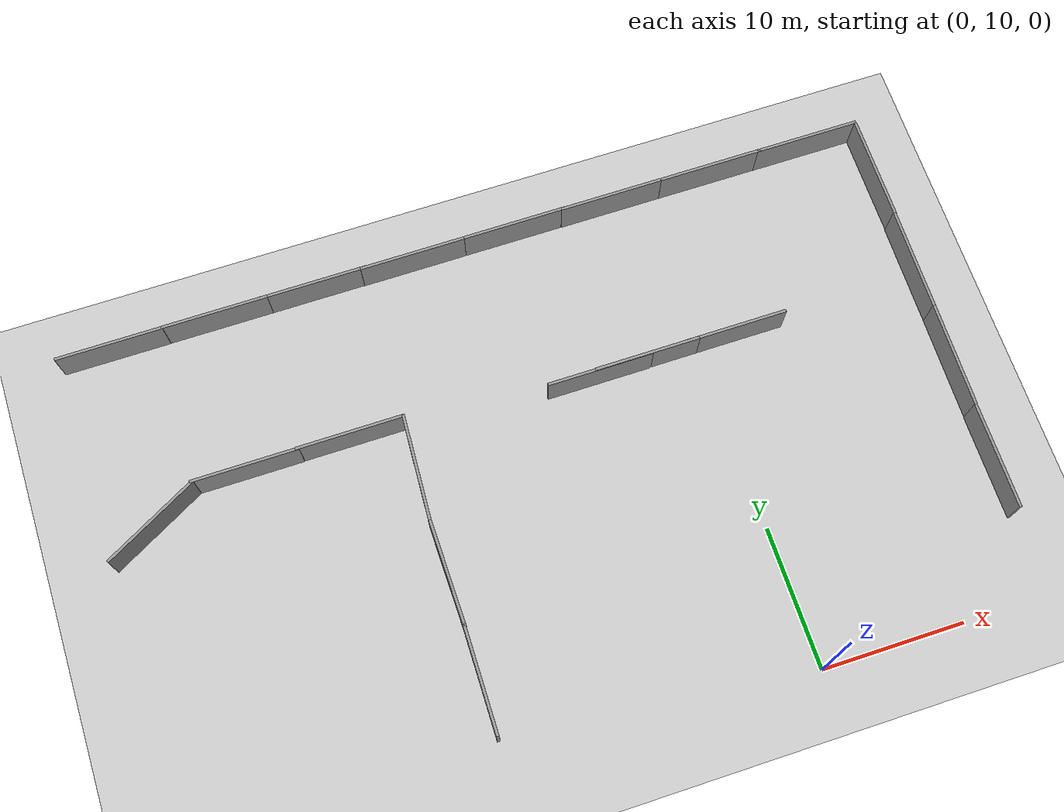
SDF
<sdf version="1.4">
 <world name="default">
  <model name="ground_plane">
   <static>1</static>
   <link name="link">
    <collision name="collision">
     <geometry><plane><normal>0 0 1</normal><size>100 100</size></plane></geometry>
     <surface><friction><ode><mu>100</mu><mu2>50</mu2></ode></friction></surface>
    </collision>
    <visual name="visual">
     <cast_shadows>0</cast_shadows>
     <geometry><plane><normal>0 0 1</normal><size>100 100</size></plane></geometry>
     <material>
      <script><uri>file://media/materials/scripts/gazebo.material</uri><name>Gazebo/Grey</name></script>
     </material>
    </visual>
    <velocity_decay><linear>0</linear><angular>0</angular></velocity_decay>
   </link>
  </model>
  <model name="grey_wall_11">
   <static>1</static>
   <link name="link">
    <pose>0 0 1.4 0 -0 0</pose>
    <collision name="collision"><geometry><box><size>7.5 0.2 2.8</size></box></geometry></collision>
    <visual name="visual">
     <cast_shadows>0</cast_shadows>
     <geometry><box><size>7.5 0.2 2.8</size></box></geometry>
     <material>
      <script>
       <uri>model://grey_wall/materials/scripts</uri>
       <uri>model://grey_wall/materials/textures</uri>
       <name>vrc/grey_wall</name>
      </script>
     </material>
    </visual>
    <velocity_decay><linear>0</linear><angular>0</angular></velocity_decay>
   </link>
   <pose>15.8981 34.2262 0 0 0 -1.58174</pose>
  </model>
  <model name="grey_wall_12">
   <static>1</static>
   <link name="link">
    <pose>0 0 1.4 0 -0 0</pose>
    <collision name="collision"><geometry><box><size>7.5 0.2 2.8</size></box></geometry></collision>
    <visual name="visual">
     <cast_shadows>0</cast_shadows>
     <geometry><box><size>7.5 0.2 2.8</size></box></geometry>
     <material>
      <script>
       <uri>model://grey_wall/materials/scripts</uri>
       <uri>model://grey_wall/materials/textures</uri>
       <name>vrc/grey_wall</name>
      </script>
     </material>
    </visual>
    <velocity_decay><linear>0</linear><angular>0</angular></velocity_decay>
   </link>
   <pose>15.8003 26.8897 0 0 0 -1.58522</pose>
  </model>
  <model name="grey_wall_13">
   <static>1</static>
   <link name="link">
    <pose>0 0 1.4 0 -0 0</pose>
    <collision name="collision"><geometry><box><size>7.5 0.2 2.8</size></box></geometry></collision>
    <visual name="visual">
     <cast_shadows>0</cast_shadows>
     <geometry><box><size>7.5 0.2 2.8</size></box></geometry>
     <material>
      <script>
       <uri>model://grey_wall/materials/scripts</uri>
       <uri>model://grey_wall/materials/textures</uri>
       <name>vrc/grey_wall</name>
      </script>
     </material>
    </visual>
    <velocity_decay><linear>0</linear><angular>0</angular></velocity_decay>
   </link>
   <pose>15.7093 19.4176 0 0 0 -1.57249</pose>
  </model>
  <model name="grey_wall_14">
   <static>1</static>
   <link name="link">
    <pose>0 0 1.4 0 -0 0</pose>
    <collision name="collision"><geometry><box><size>7.5 0.2 2.8</size></box></geometry></collision>
    <visual name="visual">
     <cast_shadows>0</cast_shadows>
     <geometry><box><size>7.5 0.2 2.8</size></box></geometry>
     <material>
      <script>
       <uri>model://grey_wall/materials/scripts</uri>
       <uri>model://grey_wall/materials/textures</uri>
       <name>vrc/grey_wall</name>
      </script>
     </material>
    </visual>
    <velocity_decay><linear>0</linear><angular>0</angular></velocity_decay>
   </link>
   <pose>15.9757 41.6543 0 0 0 -1.57098</pose>
  </model>
  <model name="grey_wall_20">
   <static>1</static>
   <link name="link">
    <pose>0 0 1.4 0 -0 0</pose>
    <collision name="collision"><geometry><box><size>7.5 0.2 2.8</size></box></geometry></collision>
    <visual name="visual">
     <cast_shadows>0</cast_shadows>
     <geometry><box><size>7.5 0.2 2.8</size></box></geometry>
     <material>
      <script>
       <uri>model://grey_wall/materials/scripts</uri>
       <uri>model://grey_wall/materials/textures</uri>
       <name>vrc/grey_wall</name>
      </script>
     </material>
    </visual>
    <velocity_decay><linear>0</linear><angular>0</angular></velocity_decay>
   </link>
   <pose>-31.1365 45.5106 0 0 -0 0</pose>
  </model>
  <model name="grey_wall_21">
   <static>1</static>
   <link name="link">
    <pose>0 0 1.4 0 -0 0</pose>
    <collision name="collision"><geometry><box><size>7.5 0.2 2.8</size></box></geometry></collision>
    <visual name="visual">
     <cast_shadows>0</cast_shadows>
     <geometry><box><size>7.5 0.2 2.8</size></box></geometry>
     <material>
      <script>
       <uri>model://grey_wall/materials/scripts</uri>
       <uri>model://grey_wall/materials/textures</uri>
       <name>vrc/grey_wall</name>
      </script>
     </material>
    </visual>
    <velocity_decay><linear>0</linear><angular>0</angular></velocity_decay>
   </link>
   <pose>-24.0972 45.5131 0 0 -0 0</pose>
  </model>
  <model name="grey_wall_22">
   <static>1</static>
   <link name="link">
    <pose>0 0 1.4 0 -0 0</pose>
    <collision name="collision"><geometry><box><size>7.5 0.2 2.8</size></box></geometry></collision>
    <visual name="visual">
     <cast_shadows>0</cast_shadows>
     <geometry><box><size>7.5 0.2 2.8</size></box></geometry>
     <material>
      <script>
       <uri>model://grey_wall/materials/scripts</uri>
       <uri>model://grey_wall/materials/textures</uri>
       <name>vrc/grey_wall</name>
      </script>
     </material>
    </visual>
    <velocity_decay><linear>0</linear><angular>0</angular></velocity_decay>
   </link>
   <pose>-16.9789 45.491 0 0 -0 0</pose>
  </model>
  <model name="grey_wall_23">
   <static>1</static>
   <link name="link">
    <pose>0 0 1.4 0 -0 0</pose>
    <collision name="collision"><geometry><box><size>7.5 0.2 2.8</size></box></geometry></collision>
    <visual name="visual">
     <cast_shadows>0</cast_shadows>
     <geometry><box><size>7.5 0.2 2.8</size></box></geometry>
     <material>
      <script>
       <uri>model://grey_wall/materials/scripts</uri>
       <uri>model://grey_wall/materials/textures</uri>
       <name>vrc/grey_wall</name>
      </script>
     </material>
    </visual>
    <velocity_decay><linear>0</linear><angular>0</angular></velocity_decay>
   </link>
   <pose>-9.61692 45.4978 0 0 -0 0</pose>
  </model>
  <model name="grey_wall_24">
   <static>1</static>
   <link name="link">
    <pose>0 0 1.4 0 -0 0</pose>
    <collision name="collision"><geometry><box><size>7.5 0.2 2.8</size></box></geometry></collision>
    <visual name="visual">
     <cast_shadows>0</cast_shadows>
     <geometry><box><size>7.5 0.2 2.8</size></box></geometry>
     <material>
      <script>
       <uri>model://grey_wall/materials/scripts</uri>
       <uri>model://grey_wall/materials/textures</uri>
       <name>vrc/grey_wall</name>
      </script>
     </material>
    </visual>
    <velocity_decay><linear>0</linear><angular>0</angular></velocity_decay>
   </link>
   <pose>-2.36117 45.4782 0 0 -0 0</pose>
  </model>
  <model name="grey_wall_25">
   <static>1</static>
   <link name="link">
    <pose>0 0 1.4 0 -0 0</pose>
    <collision name="collision"><geometry><box><size>7.5 0.2 2.8</size></box></geometry></collision>
    <visual name="visual">
     <cast_shadows>0</cast_shadows>
     <geometry><box><size>7.5 0.2 2.8</size></box></geometry>
     <material>
      <script>
       <uri>model://grey_wall/materials/scripts</uri>
       <uri>model://grey_wall/materials/textures</uri>
       <name>vrc/grey_wall</name>
      </script>
     </material>
    </visual>
    <velocity_decay><linear>0</linear><angular>0</angular></velocity_decay>
   </link>
   <pose>5.03291 45.474 0 0 -0 0</pose>
  </model>
  <model name="grey_wall_26">
   <static>1</static>
   <link name="link">
    <pose>0 0 1.4 0 -0 0</pose>
    <collision name="collision"><geometry><box><size>7.5 0.2 2.8</size></box></geometry></collision>
    <visual name="visual">
     <cast_shadows>0</cast_shadows>
     <geometry><box><size>7.5 0.2 2.8</size></box></geometry>
     <material>
      <script>
       <uri>model://grey_wall/materials/scripts</uri>
       <uri>model://grey_wall/materials/textures</uri>
       <name>vrc/grey_wall</name>
      </script>
     </material>
    </visual>
    <velocity_decay><linear>0</linear><angular>0</angular></velocity_decay>
   </link>
   <pose>12.2917 45.4674 0 0 -0 0</pose>
  </model>
  <model name="grey_wall_27">
   <static>1</static>
   <link name="link">
    <pose>0 0 1.4 0 -0 0</pose>
    <collision name="collision"><geometry><box><size>7.5 0.2 2.8</size></box></geometry></collision>
    <visual name="visual">
     <cast_shadows>0</cast_shadows>
     <geometry><box><size>7.5 0.2 2.8</size></box></geometry>
     <material>
      <script>
       <uri>model://grey_wall/materials/scripts</uri>
       <uri>model://grey_wall/materials/textures</uri>
       <name>vrc/grey_wall</name>
      </script>
     </material>
    </visual>
    <velocity_decay><linear>0</linear><angular>0</angular></velocity_decay>
   </link>
   <pose>-21.3576 15.9306 5e-06 0.00456 2e-06 -1.58472</pose>
  </model>
  <model name="grey_wall_28">
   <static>1</static>
   <link name="link">
    <pose>0 0 1.4 0 -0 0</pose>
    <collision name="collision"><geometry><box><size>7.5 0.2 2.8</size></box></geometry></collision>
    <visual name="visual">
     <cast_shadows>0</cast_shadows>
     <geometry><box><size>7.5 0.2 2.8</size></box></geometry>
     <material>
      <script>
       <uri>model://grey_wall/materials/scripts</uri>
       <uri>model://grey_wall/materials/textures</uri>
       <name>vrc/grey_wall</name>
      </script>
     </material>
    </visual>
    <velocity_decay><linear>0</linear><angular>0</angular></velocity_decay>
   </link>
   <pose>-21.3437 23.2399 0 0 0 -1.55853</pose>
  </model>
  <model name="grey_wall_29">
   <static>1</static>
   <link name="link">
    <pose>0 0 1.4 0 -0 0</pose>
    <collision name="collision"><geometry><box><size>7.5 0.2 2.8</size></box></geometry></collision>
    <visual name="visual">
     <cast_shadows>0</cast_shadows>
     <geometry><box><size>7.5 0.2 2.8</size></box></geometry>
     <material>
      <script>
       <uri>model://grey_wall/materials/scripts</uri>
       <uri>model://grey_wall/materials/textures</uri>
       <name>vrc/grey_wall</name>
      </script>
     </material>
    </visual>
    <velocity_decay><linear>0</linear><angular>0</angular></velocity_decay>
   </link>
   <pose>-21.1799 30.6302 0 0 -0 1.51593</pose>
  </model>
  <model name="grey_wall_30">
   <static>1</static>
   <link name="link">
    <pose>0 0 1.4 0 -0 0</pose>
    <collision name="collision"><geometry><box><size>7.5 0.2 2.8</size></box></geometry></collision>
    <visual name="visual">
     <cast_shadows>0</cast_shadows>
     <geometry><box><size>7.5 0.2 2.8</size></box></geometry>
     <material>
      <script>
       <uri>model://grey_wall/materials/scripts</uri>
       <uri>model://grey_wall/materials/textures</uri>
       <name>vrc/grey_wall</name>
      </script>
     </material>
    </visual>
    <velocity_decay><linear>0</linear><angular>0</angular></velocity_decay>
   </link>
   <pose>-38.7801 32.4849 -0 0 -0 0.500219</pose>
  </model>
  <model name="grey_wall_31">
   <static>1</static>
   <link name="link">
    <pose>0 0 1.4 0 -0 0</pose>
    <collision name="collision"><geometry><box><size>7.5 0.2 2.8</size></box></geometry></collision>
    <visual name="visual">
     <cast_shadows>0</cast_shadows>
     <geometry><box><size>7.5 0.2 2.8</size></box></geometry>
     <material>
      <script>
       <uri>model://grey_wall/materials/scripts</uri>
       <uri>model://grey_wall/materials/textures</uri>
       <name>vrc/grey_wall</name>
      </script>
     </material>
    </visual>
    <velocity_decay><linear>0</linear><angular>0</angular></velocity_decay>
   </link>
   <pose>-31.9612 34.2947 0 0 -0 0</pose>
  </model>
  <model name="grey_wall_32">
   <static>1</static>
   <link name="link">
    <pose>0 0 1.4 0 -0 0</pose>
    <collision name="collision"><geometry><box><size>7.5 0.2 2.8</size></box></geometry></collision>
    <visual name="visual">
     <cast_shadows>0</cast_shadows>
     <geometry><box><size>7.5 0.2 2.8</size></box></geometry>
     <material>
      <script>
       <uri>model://grey_wall/materials/scripts</uri>
       <uri>model://grey_wall/materials/textures</uri>
       <name>vrc/grey_wall</name>
      </script>
     </material>
    </visual>
    <velocity_decay><linear>0</linear><angular>0</angular></velocity_decay>
   </link>
   <pose>-24.72 34.324 0 0 -0 0</pose>
  </model>
  <model name="grey_wall_33">
   <static>1</static>
   <link name="link">
    <pose>0 0 1.4 0 -0 0</pose>
    <collision name="collision"><geometry><box><size>7.5 0.2 2.8</size></box></geometry></collision>
    <visual name="visual">
     <cast_shadows>0</cast_shadows>
     <geometry><box><size>7.5 0.2 2.8</size></box></geometry>
     <material>
      <script>
       <uri>model://grey_wall/materials/scripts</uri>
       <uri>model://grey_wall/materials/textures</uri>
       <name>vrc/grey_wall</name>
      </script>
     </material>
    </visual>
    <velocity_decay><linear>0</linear><angular>0</angular></velocity_decay>
   </link>
   <pose>-38.5263 45.4975 0 0 -0 0</pose>
  </model>
  <model name="grey_wall">
   <static>1</static>
   <link name="link">
    <pose>0 0 1.4 0 -0 0</pose>
    <collision name="collision"><geometry><box><size>7.5 0.2 2.8</size></box></geometry></collision>
    <visual name="visual">
     <cast_shadows>0</cast_shadows>
     <geometry><box><size>7.5 0.2 2.8</size></box></geometry>
     <material>
      <script>
       <uri>model://grey_wall/materials/scripts</uri>
       <uri>model://grey_wall/materials/textures</uri>
       <name>vrc/grey_wall</name>
      </script>
     </material>
    </visual>
    <velocity_decay><linear>0</linear><angular>0</angular></velocity_decay>
   </link>
   <pose>2.34301 33.4408 0 0 -0 0</pose>
  </model>
  <model name="grey_wall_5">
   <static>1</static>
   <link name="link">
    <pose>0 0 1.4 0 -0 0</pose>
    <collision name="collision"><geometry><box><size>7.5 0.2 2.8</size></box></geometry></collision>
    <visual name="visual">
     <cast_shadows>0</cast_shadows>
     <geometry><box><size>7.5 0.2 2.8</size></box></geometry>
     <material>
      <script>
       <uri>model://grey_wall/materials/scripts</uri>
       <uri>model://grey_wall/materials/textures</uri>
       <name>vrc/grey_wall</name>
      </script>
     </material>
    </visual>
    <velocity_decay><linear>0</linear><angular>0</angular></velocity_decay>
   </link>
   <pose>-3.96199 33.433 0 0 -0 0</pose>
  </model>
  <model name="grey_wall_34">
   <static>1</static>
   <link name="link">
    <pose>0 0 1.4 0 -0 0</pose>
    <collision name="collision"><geometry><box><size>7.5 0.2 2.8</size></box></geometry></collision>
    <visual name="visual">
     <cast_shadows>0</cast_shadows>
     <geometry><box><size>7.5 0.2 2.8</size></box></geometry>
     <material>
      <script>
       <uri>model://grey_wall/materials/scripts</uri>
       <uri>model://grey_wall/materials/textures</uri>
       <name>vrc/grey_wall</name>
      </script>
     </material>
    </visual>
    <velocity_decay><linear>0</linear><angular>0</angular></velocity_decay>
   </link>
   <pose>-7.34003 33.396 0 0 -0 0</pose>
  </model>
 </world>
</sdf>
